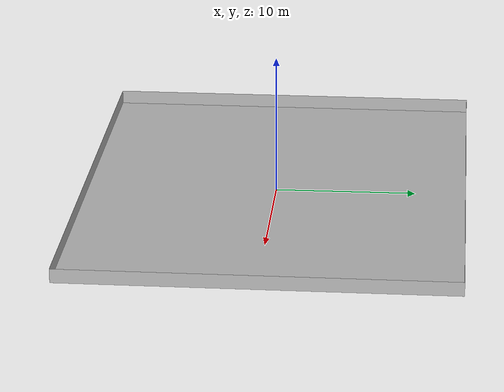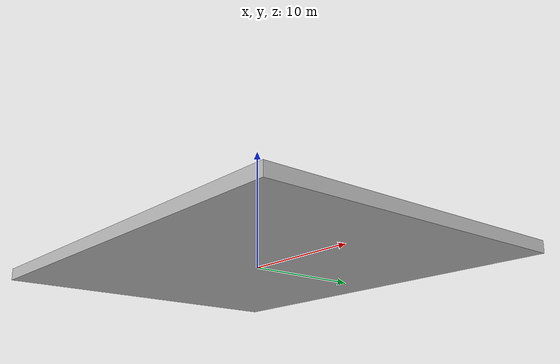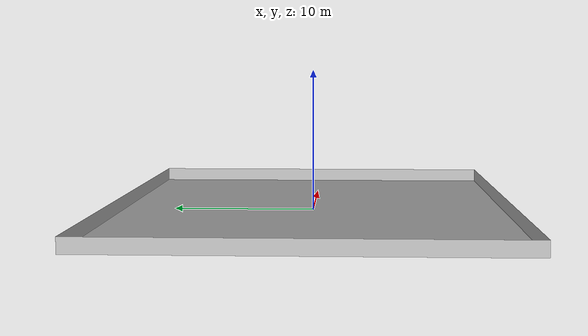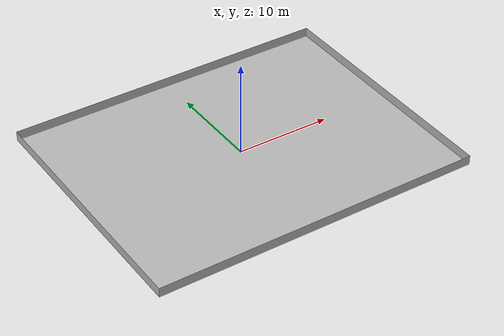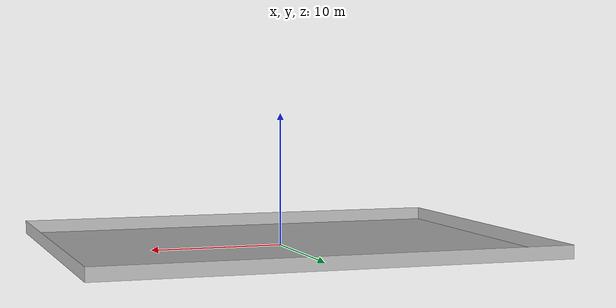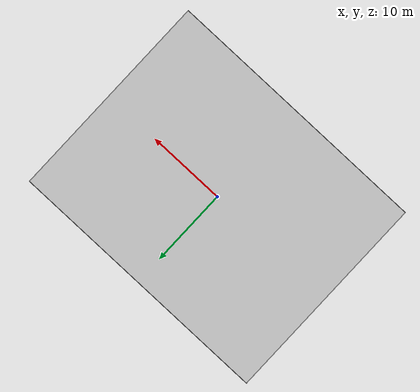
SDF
<?xml version='1.0' encoding='utf-8'?>
<sdf version="1.4">
<model name="template_model">
<link name="track">
<collision name="collision">
<pose>0 0 0 0 0 0</pose>
<geometry>
<mesh>
<uri>model://meshes/jyllandsringen_open/jyllandsringen_open_collision.dae</uri>
</mesh>
</geometry>
</collision>
<visual name="visual">
<pose>0 0 0 0 0 0</pose>
<geometry>
<mesh>
<uri>model://meshes/jyllandsringen_open/jyllandsringen_open.dae</uri>
</mesh>
</geometry>
</visual>
</link>
<static>1</static>
</model>
</sdf>
